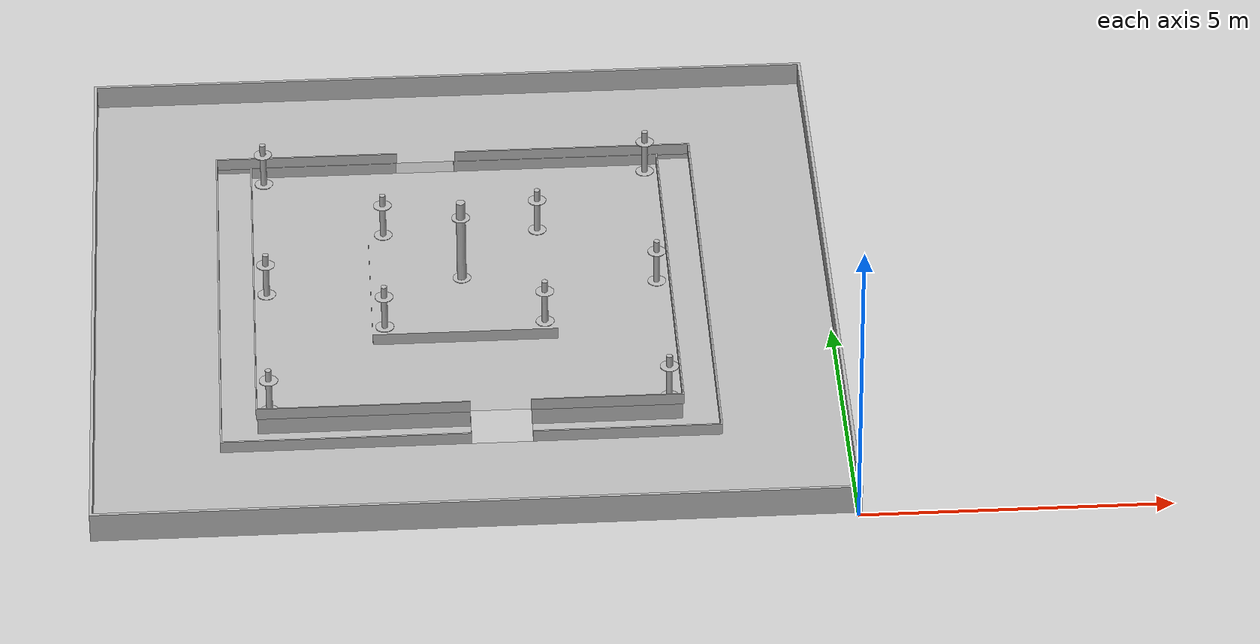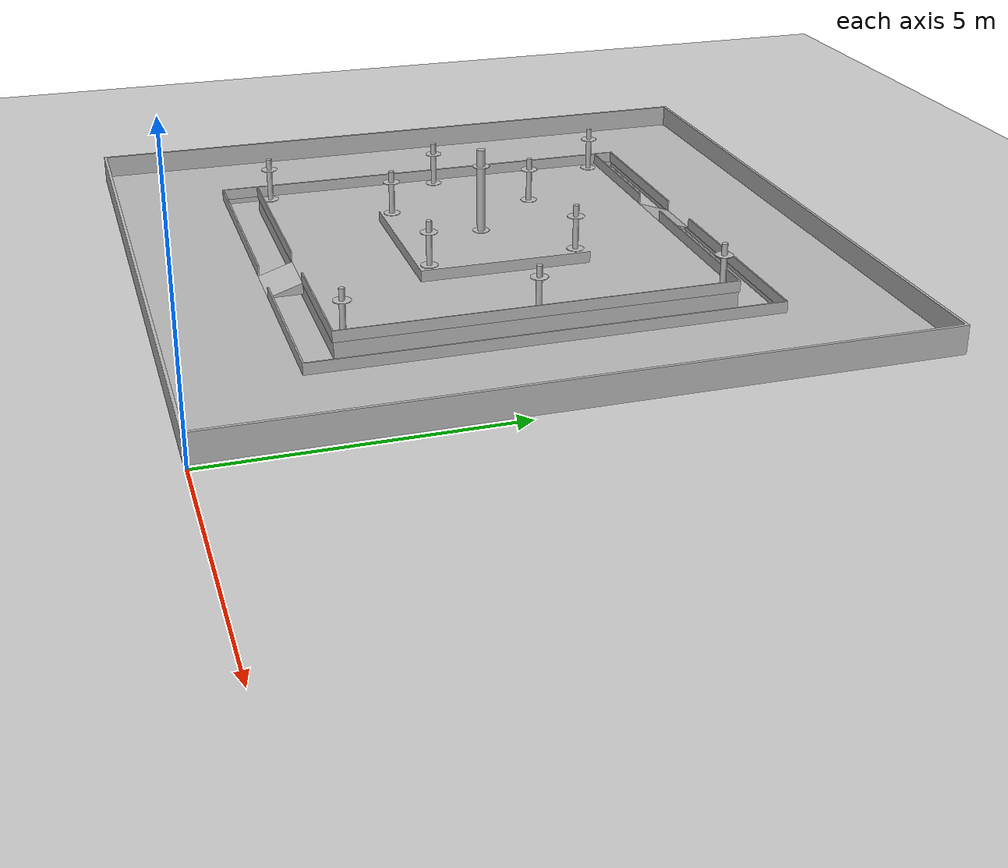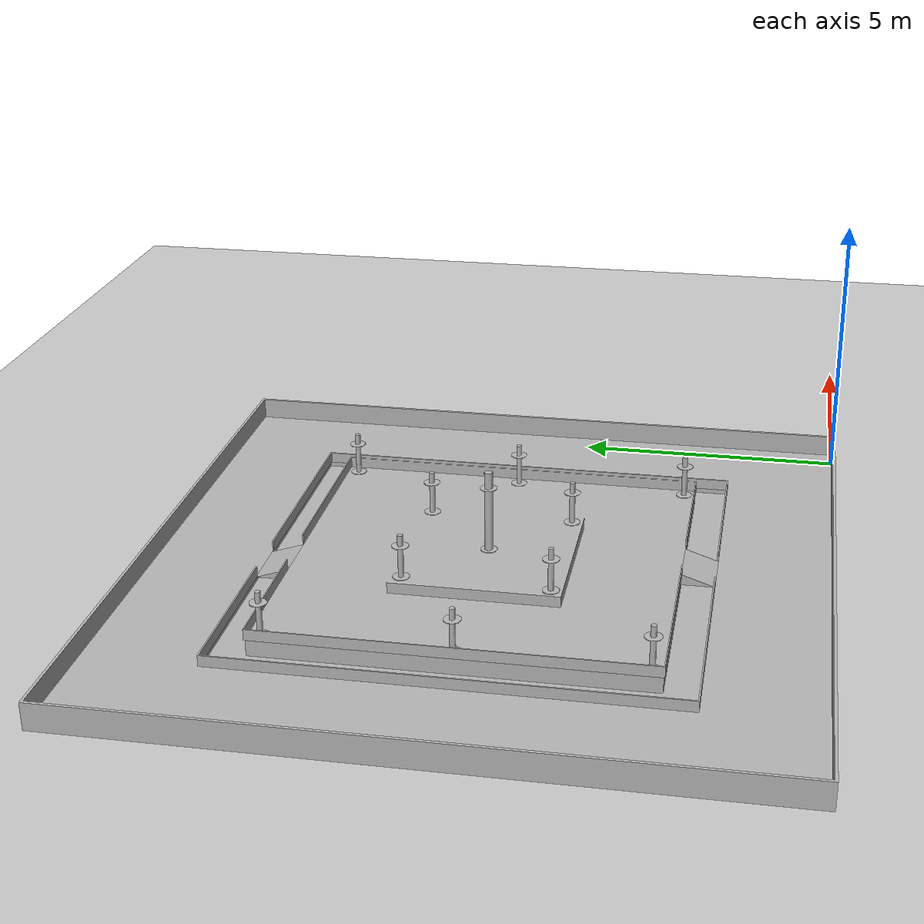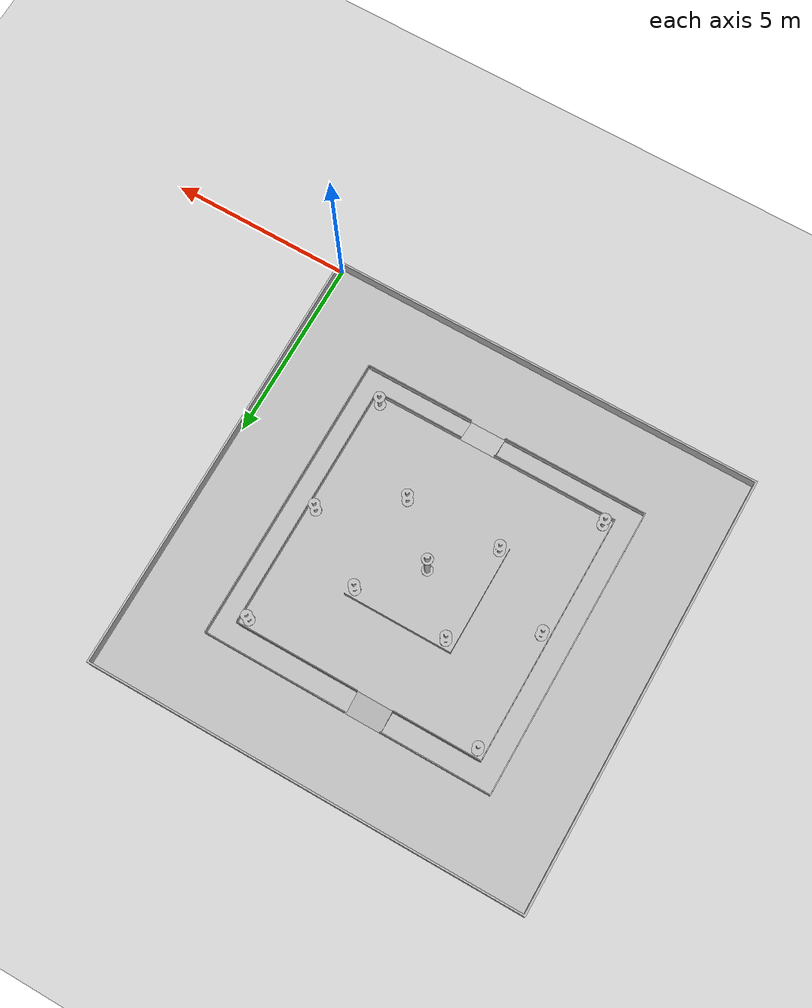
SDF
<sdf version="1.7">
 <world name="default">
  <light name="sun" type="directional">
   <pose>0 0 10 0 -0 0</pose>
   <diffuse>0.8 0.8 0.8 1</diffuse>
   <specular>0.2 0.2 0.2 1</specular>
   <attenuation>
    <range>1000</range>
    <constant>0.9</constant>
    <linear>0.01</linear>
    <quadratic>0.001</quadratic>
   </attenuation>
   <direction>-0.5 0.1 -0.9</direction>
   <spot><inner_angle>0</inner_angle><outer_angle>0</outer_angle><falloff>0</falloff></spot>
  </light>
  <model name="ground_plane">
   <static>1</static>
   <link name="link">
    <collision name="collision">
     <geometry><plane><normal>0 0 1</normal><size>100 100</size></plane></geometry>
     <surface>
      <contact><collide_bitmask>65535</collide_bitmask></contact>
      <friction><ode><mu>100</mu><mu2>50</mu2></ode></friction>
     </surface>
    </collision>
    <visual name="visual">
     <cast_shadows>0</cast_shadows>
     <geometry><plane><normal>0 0 1</normal><size>100 100</size></plane></geometry>
     <material>
      <script><uri>file://media/materials/scripts/gazebo.material</uri><name>Gazebo/Grey</name></script>
     </material>
    </visual>
   </link>
  </model>
  <gravity>0 0 -9.8</gravity>
  <magnetic_field>6e-06 2.3e-05 -4.2e-05</magnetic_field>
  <atmosphere type="adiabatic"/>
  <physics type="ode">
   <max_step_size>0.001</max_step_size>
   <real_time_factor>1</real_time_factor>
   <real_time_update_rate>1000</real_time_update_rate>
  </physics>
  <scene><ambient>0.4 0.4 0.4 1</ambient><background>0.7 0.7 0.7 1</background><shadows>1</shadows></scene>
  <spherical_coordinates>
   <surface_model>EARTH_WGS84</surface_model>
   <latitude_deg>0</latitude_deg>
   <longitude_deg>0</longitude_deg>
   <elevation>0</elevation>
   <heading_deg>0</heading_deg>
  </spherical_coordinates>
  <model name="field_rc23">
   <link name="base_link1">
    <inertial>
     <pose>-5.99999 6 0.129573 0 -0 0</pose>
     <mass>26483.4</mass>
     <inertia>
      <ixx>227709</ixx>
      <ixy>89.7806</ixy>
      <ixz>-0.27888</ixz>
      <iyy>226607</iyy>
      <iyz>1.09139e-11</iyz>
      <izz>453683</izz>
     </inertia>
    </inertial>
    <collision name="base_link1_collision">
     <geometry>
      <mesh><scale>1 1 1</scale><uri>model://rc_gazebo/worlds/place/field_rc23/meshes/base_link1.STL</uri></mesh>
     </geometry>
    </collision>
    <collision name="base_link1_fixed_joint_lump__baffle_baf_collision_1">
     <pose>0.05 -0.05 0 0 0 -3.14159</pose>
     <geometry>
      <mesh><scale>1 1 1</scale><uri>model://rc_gazebo/worlds/place/field_rc23/meshes/baffle_baf.STL</uri></mesh>
     </geometry>
    </collision>
    <collision name="base_link1_fixed_joint_lump__column_collision_2">
     <pose>0.05 -0.05 0 0 0 -3.14159</pose>
     <geometry>
      <mesh><scale>1 1 1</scale><uri>model://rc_gazebo/worlds/place/field_rc23/meshes/column.STL</uri></mesh>
     </geometry>
    </collision>
    <collision name="base_link1_fixed_joint_lump__slope_collision_3">
     <pose>0.05 -0.05 0 0 0 -3.14159</pose>
     <geometry>
      <mesh><scale>1 1 1</scale><uri>model://rc_gazebo/worlds/place/field_rc23/meshes/slope.STL</uri></mesh>
     </geometry>
    </collision>
    <visual name="base_link1_visual">
     <geometry>
      <mesh><scale>1 1 1</scale><uri>model://rc_gazebo/worlds/place/field_rc23/meshes/base_link1.STL</uri></mesh>
     </geometry>
    </visual>
    <visual name="base_link1_fixed_joint_lump__baffle_baf_visual_1">
     <pose>0.05 -0.05 0 0 0 -3.14159</pose>
     <geometry>
      <mesh><scale>1 1 1</scale><uri>model://rc_gazebo/worlds/place/field_rc23/meshes/baffle_baf.STL</uri></mesh>
     </geometry>
    </visual>
    <visual name="base_link1_fixed_joint_lump__column_visual_2">
     <pose>0.05 -0.05 0 0 0 -3.14159</pose>
     <geometry>
      <mesh><scale>1 1 1</scale><uri>model://rc_gazebo/worlds/place/field_rc23/meshes/column.STL</uri></mesh>
     </geometry>
    </visual>
    <visual name="base_link1_fixed_joint_lump__slope_visual_3">
     <pose>0.05 -0.05 0 0 0 -3.14159</pose>
     <geometry>
      <mesh><scale>1 1 1</scale><uri>model://rc_gazebo/worlds/place/field_rc23/meshes/slope.STL</uri></mesh>
     </geometry>
    </visual>
   </link>
   <pose>0 0 0.1 0 -0 0</pose>
  </model>
 </world>
</sdf>
